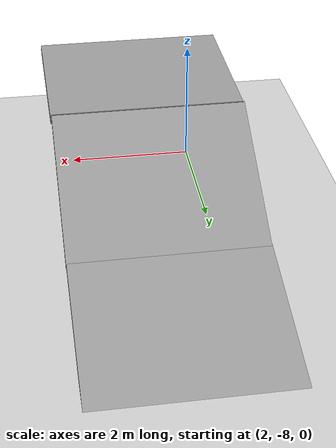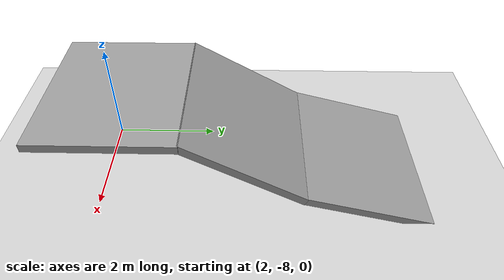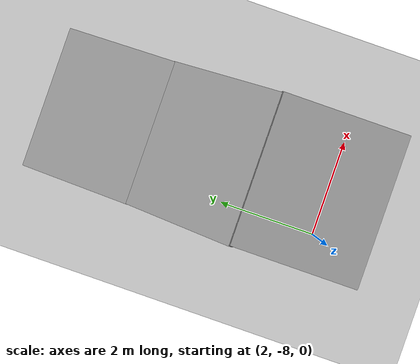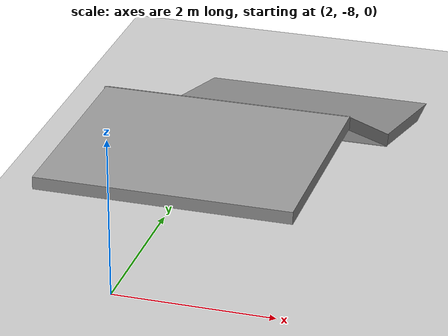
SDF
<sdf version="1.7">
 <world name="default">
  <light name="sun" type="directional">
   <pose>0 0 10 0 -0 0</pose>
   <diffuse>0.8 0.8 0.8 1</diffuse>
   <specular>0.2 0.2 0.2 1</specular>
   <attenuation>
    <range>1000</range>
    <constant>0.9</constant>
    <linear>0.01</linear>
    <quadratic>0.001</quadratic>
   </attenuation>
   <direction>-0.5 0.1 -0.9</direction>
   <spot><inner_angle>0</inner_angle><outer_angle>0</outer_angle><falloff>0</falloff></spot>
  </light>
  <model name="ground_plane">
   <static>1</static>
   <link name="link">
    <collision name="collision">
     <geometry><plane><normal>0 0 1</normal><size>100 100</size></plane></geometry>
     <surface>
      <contact><collide_bitmask>65535</collide_bitmask></contact>
      <friction><ode><mu>100</mu><mu2>50</mu2></ode></friction>
     </surface>
    </collision>
    <visual name="visual">
     <cast_shadows>0</cast_shadows>
     <geometry><plane><normal>0 0 1</normal><size>100 100</size></plane></geometry>
     <material>
      <script><uri>file://media/materials/scripts/gazebo.material</uri><name>Gazebo/Grey</name></script>
     </material>
    </visual>
   </link>
  </model>
  <gravity>0 0 -9.8</gravity>
  <magnetic_field>6e-06 2.3e-05 -4.2e-05</magnetic_field>
  <atmosphere type="adiabatic"/>
  <physics type="ode">
   <max_step_size>0.001</max_step_size>
   <real_time_factor>1</real_time_factor>
   <real_time_update_rate>1000</real_time_update_rate>
  </physics>
  <scene><ambient>0.4 0.4 0.4 1</ambient><background>0.7 0.7 0.7 1</background><shadows>1</shadows></scene>
  <audio><device>default</device></audio>
  <spherical_coordinates>
   <surface_model>EARTH_WGS84</surface_model>
   <latitude_deg>0</latitude_deg>
   <longitude_deg>0</longitude_deg>
   <elevation>0</elevation>
   <heading_deg>0</heading_deg>
  </spherical_coordinates>
  <model name="Untitled">
   <pose>3.10793 -1.36439 1.65175 1.309 -0 0</pose>
   <link name="Wall_0">
    <collision name="Wall_0_Collision">
     <geometry><box><size>3 0.15 2.5</size></box></geometry>
     <pose>0 0 1.25 0 -0 0</pose>
    </collision>
    <visual name="Wall_0_Visual">
     <pose>0 0 1.25 0 -0 0</pose>
     <geometry><box><size>3 0.15 2.5</size></box></geometry>
     <material>
      <script><uri>file://media/materials/scripts/gazebo.material</uri><name>Gazebo/Grey</name></script>
      <ambient>1 1 1 1</ambient>
     </material>
     <meta><layer>0</layer></meta>
    </visual>
    <pose>-0.2275 -1.8075 0 0 -0 0</pose>
   </link>
   <static>1</static>
  </model>
  <model name="Untitled_0">
   <pose>3.76897 -3.06937 2.5069 1.0472 -0 0</pose>
   <link name="Wall_3">
    <collision name="Wall_3_Collision">
     <geometry><box><size>3 0.15 2.5</size></box></geometry>
     <pose>0 0 1.25 0 -0 0</pose>
    </collision>
    <visual name="Wall_3_Visual">
     <pose>0 0 1.25 0 -0 0</pose>
     <geometry><box><size>3 0.15 2.5</size></box></geometry>
     <material>
      <script><uri>file://media/materials/scripts/gazebo.material</uri><name>Gazebo/Grey</name></script>
      <ambient>1 1 1 1</ambient>
     </material>
     <meta><layer>0</layer></meta>
    </visual>
    <pose>-0.8825 -2.2725 0 0 -0 0</pose>
   </link>
   <static>1</static>
  </model>
  <model name="Untitled_1">
   <pose>2.90537 -6.31615 3.6516 1.5708 1e-06 0</pose>
   <link name="Wall_5">
    <collision name="Wall_5_Collision">
     <geometry><box><size>3 0.15 2.5</size></box></geometry>
     <pose>0 0 1.25 0 -0 0</pose>
    </collision>
    <visual name="Wall_5_Visual">
     <pose>0 0 1.25 0 -0 0</pose>
     <geometry><box><size>3 0.15 2.5</size></box></geometry>
     <material>
      <script><uri>file://media/materials/scripts/gazebo.material</uri><name>Gazebo/Grey</name></script>
      <ambient>1 1 1 1</ambient>
     </material>
     <meta><layer>0</layer></meta>
    </visual>
    <pose>0 -1.8775 0 0 -0 0</pose>
   </link>
   <static>1</static>
  </model>
 </world>
</sdf>
